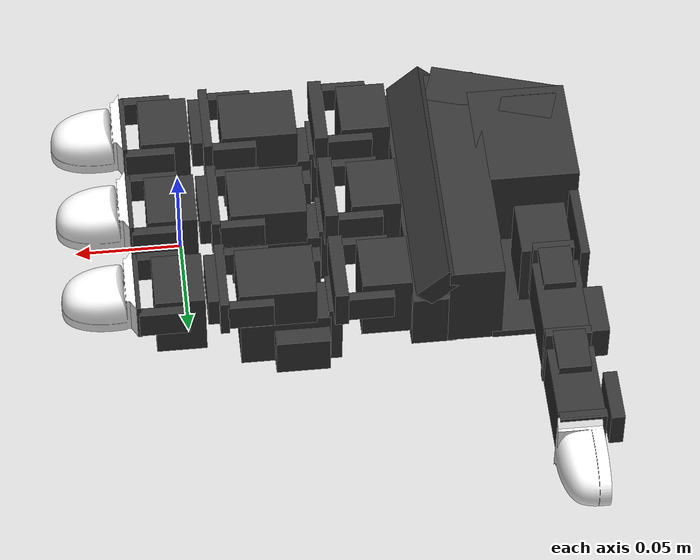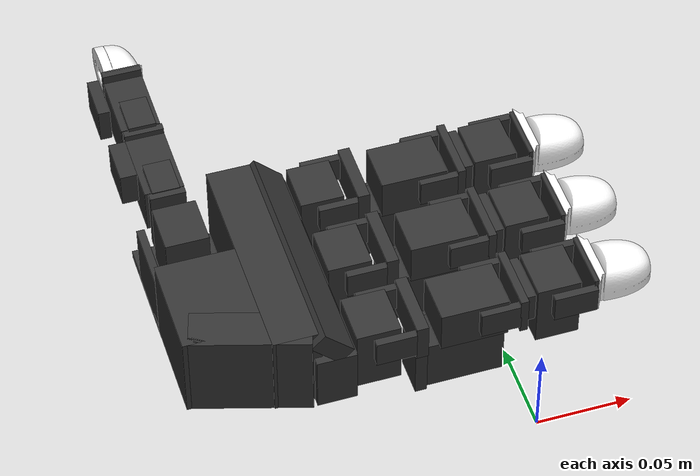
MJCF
<mujoco model="leap_lh">
  <compiler angle="radian" meshdir="./assets/"/>
  <option integrator="implicitfast" cone="elliptic" impratio="100"/>

  <asset>
    <material name="black" rgba="0.2 0.2 0.2 1" />
    <material name="white" rgba="1 1 1 1" />

    <!-- Only tip meshes needed (used as collision geoms) -->
    <mesh name="tip" file="M2826_tip.obj"/>
    <mesh name="thumb_tip" file="M2826_thumb_tip.obj"/>
  </asset>

  <!-- defaults -->
  <default>
    <!-- constraint stiffness -->
    <geom solimp="0.999 0.999 0.001 0.0001 1" solref="0.0001 1" friction=".2"/>

    <!-- actuator defaults -->
    <position kp="3.0" kv="0.01" />
    <joint damping="0.03" frictionloss="0.001"/>

    <!-- geom class defaults -->
    <default class="collision">
      <geom material="black" />
    </default>
    <default class="tip">
      <geom type="mesh" mesh="tip" friction="0.5" material="white" />
    </default>
    <default class="thumb_tip">
      <geom type="mesh" mesh="thumb_tip" friction="0.5" material="white" />
    </default>

    <!-- joint class defaults -->
    <default class="mcp">
      <joint pos="0 0 0" axis="0 0 -1"
        limited="true" range="-0.1 1.91986" />
      <position ctrlrange="-0.1 1.91986" />
    </default>
    <default class="rot">
      <joint pos="0 0 0" axis="0 0 -1"
        limited="true" range="-0.523599 0.523599" />
      <position ctrlrange="-0.523599 0.523599" />
    </default>
    <default class="pip">
      <joint pos="0 0 0" axis="0 0 -1"
        limited="true" range="-0.05 1.91986" />
      <position ctrlrange="-0.1 1.91986" />
    </default>
    <default class="dip">
      <joint pos="0 0 0" axis="0 0 -1"
        limited="true" range="-0.1 1.91986" />
      <position ctrlrange="-0.1 1.91986" />
    </default>
    <default class="thumb_cmc">
      <joint pos="0 0 0" axis="0 0 1"
        limited="true" range="0  2.094" />
      <position ctrlrange="0 2.094" />
    </default>
    <default class="thumb_axl">
      <joint pos="0 0 0" axis="0 0 -1"
        limited="true" range="-2.1 0" />
      <position ctrlrange="-2.1 0" />
    </default>
    <default class="thumb_mcp">
      <joint pos="0 0 0" axis="0 0 -1"
        limited="true" range="-0.47 2.443" />
      <position ctrlrange="-0.47 2.443" />
    </default>
    <default class="thumb_ipl">
      <joint pos="0 0 0" axis="0 0 -1"
        limited="true" range="0 1.88" />
      <position ctrlrange="0 1.88" />
    </default>
  </default>

  <!-- collision filtering -->
  <contact>
    <!-- filter the palm from all other finger bodies except the tips -->
    <exclude body1="palm" body2="if_bs" />
    <exclude body1="palm" body2="mf_bs" />
    <exclude body1="palm" body2="rf_bs" />
    <exclude body1="palm" body2="th_mp" />

    <exclude body1="palm" body2="if_px" />
    <exclude body1="palm" body2="mf_px" />
    <exclude body1="palm" body2="rf_px" />
    <exclude body1="palm" body2="th_bs" />

    <exclude body1="palm" body2="if_md" />
    <exclude body1="palm" body2="mf_md" />
    <exclude body1="palm" body2="rf_md" />
    <exclude body1="palm" body2="th_px" />

    <!-- none of the base fingertip geoms can touch each other -->
    <exclude body1="if_bs" body2="mf_bs" />
    <exclude body1="if_bs" body2="rf_bs" />
    <exclude body1="mf_bs" body2="rf_bs" />

    <exclude body1="th_mp" body2="if_bs" />
    <exclude body1="th_mp" body2="mf_bs" />
    <exclude body1="th_mp" body2="rf_bs" />
  </contact>

  <!-- actuators -->
  <actuator>
    <!-- index -->
    <position name="if_mcp_act" joint="if_mcp" class="mcp" />
    <position name="if_rot_act" joint="if_rot" class="rot" />
    <position name="if_pip_act" joint="if_pip" class="pip" />
    <position name="if_dip_act" joint="if_dip" class="dip" />

    <!-- middle -->
    <position name="mf_mcp_act" joint="mf_mcp" class="mcp" />
    <position name="mf_rot_act" joint="mf_rot" class="rot" />
    <position name="mf_pip_act" joint="mf_pip" class="pip" />
    <position name="mf_dip_act" joint="mf_dip" class="dip" />

    <!-- ring -->
    <position name="rf_mcp_act" joint="rf_mcp" class="mcp" />
    <position name="rf_rot_act" joint="rf_rot" class="rot" />
    <position name="rf_pip_act" joint="rf_pip" class="pip" />
    <position name="rf_dip_act" joint="rf_dip" class="dip" />

    <!-- thumb -->
    <position name="th_cmc_act" joint="th_cmc" class="thumb_cmc" />
    <position name="th_axl_act" joint="th_axl" class="thumb_axl" />
    <position name="th_mcp_act" joint="th_mcp" class="thumb_mcp" />
    <position name="th_ipl_act" joint="th_ipl" class="thumb_ipl" />
  </actuator>

  <!-- sensors -->
  <sensor>
    <!-- index -->
    <jointpos name="if_mcp_sensor" joint="if_mcp" />
    <jointpos name="if_rot_sensor" joint="if_rot" />
    <jointpos name="if_pip_sensor" joint="if_pip" />
    <jointpos name="if_dip_sensor" joint="if_dip" />

    <!-- middle -->
    <jointpos name="mf_mcp_sensor" joint="mf_mcp" />
    <jointpos name="mf_rot_sensor" joint="mf_rot" />
    <jointpos name="mf_pip_sensor" joint="mf_pip" />
    <jointpos name="mf_dip_sensor" joint="mf_dip" />

    <!-- ring -->
    <jointpos name="rf_mcp_sensor" joint="rf_mcp" />
    <jointpos name="rf_rot_sensor" joint="rf_rot" />
    <jointpos name="rf_pip_sensor" joint="rf_pip" />
    <jointpos name="rf_dip_sensor" joint="rf_dip" />

    <!-- thumb -->
    <jointpos name="th_cmc_sensor" joint="th_cmc" />
    <jointpos name="th_axl_sensor" joint="th_axl" />
    <jointpos name="th_mcp_sensor" joint="th_mcp" />
    <jointpos name="th_ipl_sensor" joint="th_ipl" />
  </sensor>

  <worldbody>
    <body name="palm" pos="0 0 0.1" quat="0 1 0 0">
      <!-- palm -->
      <inertial pos="-0.12546 -0.047739 0.015867" quat="0.423786 0.570263 -0.402758 0.577054" mass="0.235" diaginertia="0.000405067 0.000304529 0.000179484"/>
      <geom name="palm_collision_1" size="0.011 0.013 0.017" pos="-0.0848 -0.0996 0.0152" type="box" class="collision"/>
      <geom name="palm_collision_2" size="0.011 0.013 0.017" pos="-0.0848 -0.0546 0.0152" type="box" class="collision"/>
      <geom name="palm_collision_3" size="0.011 0.013 0.017" pos="-0.0848 -0.0096 0.0152" type="box" class="collision"/>
      <geom name="palm_collision_4" size="0.029 0.01 0.023" pos="-0.1428 -0.0126 0.0147" quat="0.989016 0 0 0.147806" type="box" class="collision"/>
      <geom name="palm_collision_5" size="0.01 0.06 0.015" pos="-0.1058 -0.0555 0.0232" type="box" class="collision"/>
      <geom name="palm_collision_6" size="0.005 0.06 0.01" pos="-0.1078 -0.0555 0.0002" quat="0.923956 0 0.382499 0" type="box" class="collision"/>
      <geom name="palm_collision_7" size="0.012 0.058 0.023" pos="-0.1238 -0.0575 0.0147" type="box" class="collision"/>
      <geom name="palm_collision_8" size="0.022 0.026 0.023" pos="-0.1538 -0.0375 0.0147" type="box" class="collision"/>
      <geom name="palm_collision_9" size="0.002 0.018 0.017" pos="-0.1738 -0.0815 0.0202" type="box" class="collision"/>
      <geom name="palm_collision_10" size="0.022 0.028 0.002" pos="-0.1538 -0.0875 0.0362" type="box" class="collision"/>

      <!-- index -->
      <body name="if_bs" pos="-0.0825 -0.0857 0.0078" quat="0.500003 0.5 0.5 -0.499997">
        <inertial pos="-0.022516 0.033882 0.016359" quat="0.388092 0.677951 -0.247713 0.573067" mass="0.044" diaginertia="1.74972e-05 1.61504e-05 7.21342e-06"/>
        <joint name="if_mcp" class="mcp"/>
        <geom name="if_bs_collision_1" size="0.01 0.003 0.017" pos="0 0.018 0.0147" type="box" class="collision"/>
        <geom name="if_bs_collision_2" size="0.014 0.02 0.01" pos="-0.027 0.042 0.015" type="box" class="collision"/>
        <geom name="if_bs_collision_3" size="0.017 0.003 0.01" pos="-0.0262 0.02 0.0146" type="box" class="collision"/>
        <geom name="if_bs_collision_4" size="0.01 0.012 0.004" pos="-0.0295 0.035 0.029" type="box" class="collision"/>
        <geom name="if_bs_collision_5" size="0.007 0.01 0.002" pos="0 0.005 0.03" type="box" class="collision"/>
        <geom name="if_bs_collision_6" size="0.007 0.01 0.002" pos="0 0.005 -0.001" type="box" class="collision"/>

        <body name="if_px" pos="-0.0122 0.0381 0.0145" quat="0.500003 -0.5 -0.499997 0.5">
          <inertial pos="0.0075 -0.0002 -0.011" quat="0 0.707107 0 0.707107" mass="0.032" diaginertia="4.8853e-06 4.3733e-06 3.0933e-06"/>
          <joint name="if_rot" class="rot"/>
          <geom name="if_px_collision" size="0.017 0.013 0.011" pos="0.0075 -0.0002 -0.011" type="box" class="collision"/>

          <body name="if_md" pos="0.015 0.0143 -0.013" quat="0.500003 0.5 -0.5 0.499997">
            <inertial pos="0.0054215 -0.029148 0.015" quat="0.687228 0.687228 0.166487 0.166487" mass="0.037" diaginertia="8.28004e-06 8.1598e-06 5.39516e-06"/>
            <joint name="if_pip" class="pip"/>
            <geom name="if_md_collision_1" size="0.008 0.003 0.013" pos="0 -0.02 0.015" type="box" class="collision"/>
            <geom name="if_md_collision_2" size="0.01 0.002 0.017" pos="0 -0.016 0.015" type="box" class="collision"/>
            <geom name="if_md_collision_3" size="0.007 0.01 0.002" pos="0 -0.0045 0.03" type="box" class="collision"/>
            <geom name="if_md_collision_4" size="0.007 0.01 0.002" pos="0 -0.0045 0" type="box" class="collision"/>
            <geom name="if_md_collision_5" size="0.017 0.011 0.013" pos="0.0075 -0.035 0.015" type="box" class="collision"/>

            <body name="if_ds" pos="0 -0.0361 0.0002">
              <inertial pos="-0.0008794 -0.027019 0.014594" quat="0.702905 0.710643 -0.0212937 -0.0214203" mass="0.016" diaginertia="3.71863e-06 3.02396e-06 1.6518e-06"/>
              <joint name="if_dip" class="dip"/>
              <geom name="if_ds_collision_1" size="0.01 0.001 0.015" pos="0 -0.017 0.015" type="box" class="collision"/>
              <geom name="if_ds_collision_2" size="0.007 0.011 0.002" pos="0 -0.006 0.03" type="box" class="collision"/>
              <geom name="if_ds_collision_3" size="0.007 0.011 0.002" pos="0 -0.006 -0.001" type="box" class="collision"/>

              <geom name="if_tip" class="tip"/>
            </body>

          </body>
        </body>
      </body>  <!-- index -->

      <!-- middle -->
      <body name="mf_bs" pos="-0.0825 -0.0403 0.0078" quat="0.500003 0.5 0.5 -0.499997">
        <inertial pos="-0.022516 0.033882 0.016359" quat="0.388092 0.677951 -0.247713 0.573067" mass="0.044" diaginertia="1.74972e-05 1.61504e-05 7.21342e-06"/>
        <joint name="mf_mcp" class="mcp"/>
        <geom name="mf_bs_collision_1" size="0.01 0.003 0.017" pos="0 0.018 0.0147" type="box" class="collision"/>
        <geom name="mf_bs_collision_2" size="0.014 0.02 0.01" pos="-0.027 0.042 0.015" type="box" class="collision"/>
        <geom name="mf_bs_collision_3" size="0.017 0.003 0.01" pos="-0.0262 0.02 0.0146" type="box" class="collision"/>
        <geom name="mf_bs_collision_4" size="0.01 0.012 0.004" pos="-0.0295 0.035 0.029" type="box" class="collision"/>
        <geom name="mf_bs_collision_5" size="0.007 0.01 0.002" pos="0 0.005 0.03" type="box" class="collision"/>
        <geom name="mf_bs_collision_6" size="0.007 0.01 0.002" pos="0 0.005 -0.001" type="box" class="collision"/>

        <body name="mf_px" pos="-0.0122 0.0381 0.0145" quat="0.500003 -0.5 -0.499997 0.5">
          <inertial pos="0.0075 -0.0002 -0.011" quat="0 0.707107 0 0.707107" mass="0.032" diaginertia="4.8853e-06 4.3733e-06 3.0933e-06"/>
          <joint name="mf_rot" class="rot"/>
          <geom name="mf_px_collision" size="0.017 0.013 0.011" pos="0.0075 -0.0002 -0.011" type="box" class="collision"/>

          <body name="mf_md" pos="0.015 0.0143 -0.013" quat="0.500003 0.5 -0.5 0.499997">
            <inertial pos="0.0054215 -0.029148 0.015" quat="0.687228 0.687228 0.166487 0.166487" mass="0.037" diaginertia="8.28004e-06 8.1598e-06 5.39516e-06"/>
            <joint name="mf_pip" class="pip"/>
            <geom name="mf_md_collision_1" size="0.008 0.003 0.013" pos="0 -0.02 0.015" type="box" class="collision"/>
            <geom name="mf_md_collision_2" size="0.01 0.002 0.017" pos="0 -0.016 0.015" type="box" class="collision"/>
            <geom name="mf_md_collision_3" size="0.007 0.01 0.002" pos="0 -0.0045 0.03" type="box" class="collision"/>
            <geom name="mf_md_collision_4" size="0.007 0.01 0.002" pos="0 -0.0045 0" type="box" class="collision"/>
            <geom name="mf_md_collision_5" size="0.017 0.011 0.013" pos="0.0075 -0.035 0.015" type="box" class="collision"/>

            <body name="mf_ds" pos="0 -0.0361 0.0002">
              <inertial pos="-0.0008794 -0.027019 0.014594" quat="0.702905 0.710643 -0.0212937 -0.0214203" mass="0.016" diaginertia="3.71863e-06 3.02396e-06 1.6518e-06"/>
              <joint name="mf_dip" class="dip"/>
              <geom name="mf_ds_collision_1" size="0.01 0.001 0.015" pos="0 -0.017 0.015" type="box" class="collision"/>
              <geom name="mf_ds_collision_2" size="0.007 0.011 0.002" pos="0 -0.006 0.03" type="box" class="collision"/>
              <geom name="mf_ds_collision_3" size="0.007 0.011 0.002" pos="0 -0.006 -0.001" type="box" class="collision"/>

              <geom name="mf_tip" class="tip"/>
            </body>

          </body>
        </body>
      </body>  <!-- middle -->

      <!-- ring -->
      <body name="rf_bs" pos="-0.0825 0.0051 0.0078" quat="0.500003 0.5 0.5 -0.499997">
        <inertial pos="-0.022516 0.033882 0.016359" quat="0.388092 0.677951 -0.247713 0.573067" mass="0.044" diaginertia="1.74972e-05 1.61504e-05 7.21342e-06"/>
        <joint name="rf_mcp" class="mcp"/>
        <geom name="rf_bs_collision_1" size="0.01 0.003 0.017" pos="0 0.018 0.0147" type="box" class="collision"/>
        <geom name="rf_bs_collision_2" size="0.014 0.02 0.01" pos="-0.027 0.042 0.015" type="box" class="collision"/>
        <geom name="rf_bs_collision_3" size="0.017 0.003 0.01" pos="-0.0262 0.02 0.0146" type="box" class="collision"/>
        <geom name="rf_bs_collision_4" size="0.01 0.012 0.004" pos="-0.0295 0.035 0.029" type="box" class="collision"/>
        <geom name="rf_bs_collision_5" size="0.007 0.01 0.002" pos="0 0.005 0.03" type="box" class="collision"/>
        <geom name="rf_bs_collision_6" size="0.007 0.01 0.002" pos="0 0.005 -0.001" type="box" class="collision"/>

        <body name="rf_px" pos="-0.0122 0.0381 0.0145" quat="0.500003 -0.5 -0.499997 0.5">
          <inertial pos="0.0075 -0.0002 -0.011" quat="0 0.707107 0 0.707107" mass="0.032" diaginertia="4.8853e-06 4.3733e-06 3.0933e-06"/>
          <joint name="rf_rot" class="rot"/>
          <geom name="rf_px_collision" size="0.017 0.013 0.011" pos="0.0075 -0.0002 -0.011" type="box" class="collision"/>

          <body name="rf_md" pos="0.015 0.0143 -0.013" quat="0.500003 0.5 -0.5 0.499997">
            <inertial pos="0.0054215 -0.029148 0.015" quat="0.687228 0.687228 0.166487 0.166487" mass="0.037" diaginertia="8.28004e-06 8.1598e-06 5.39516e-06"/>
            <joint name="rf_pip" class="pip"/>
            <geom name="rf_md_collision_1" size="0.008 0.003 0.013" pos="0 -0.02 0.015" type="box" class="collision"/>
            <geom name="rf_md_collision_2" size="0.01 0.002 0.017" pos="0 -0.016 0.015" type="box" class="collision"/>
            <geom name="rf_md_collision_3" size="0.007 0.01 0.002" pos="0 -0.0045 0.03" type="box" class="collision"/>
            <geom name="rf_md_collision_4" size="0.007 0.01 0.002" pos="0 -0.0045 0" type="box" class="collision"/>
            <geom name="rf_md_collision_5" size="0.017 0.011 0.013" pos="0.0075 -0.035 0.015" type="box" class="collision"/>

            <body name="rf_ds" pos="0 -0.03609 0.0002">
              <inertial pos="-0.0008794 -0.027019 0.014594" quat="0.702905 0.710643 -0.0212937 -0.0214203" mass="0.016" diaginertia="3.71863e-06 3.02396e-06 1.6518e-06"/>
              <joint name="rf_dip" class="dip"/>
              <geom name="rf_ds_collision_1" size="0.01 0.001 0.015" pos="0 -0.017 0.015" type="box" class="collision"/>
              <geom name="rf_ds_collision_2" size="0.007 0.011 0.002" pos="0 -0.006 0.03" type="box" class="collision"/>
              <geom name="rf_ds_collision_3" size="0.007 0.011 0.002" pos="0 -0.006 -0.001" type="box" class="collision"/>

              <geom name="rf_tip" class="tip"/>
            </body>

          </body>
        </body>
      </body>  <!-- ring -->

      <!-- thumb -->
      <body name="th_mp" pos="-0.1448 -0.09 0.0049" quat="0.707109 0 0.707105 0">
        <inertial pos="-0.0069 0 -0.0109" quat="0 0.707107 0 0.707107" mass="0.032" diaginertia="4.8853e-06 4.3733e-06 3.0933e-06"/>
        <joint name="th_cmc" class="thumb_cmc"/>
        <geom name="th_mp_collision" size="0.017 0.013 0.011" pos="-0.0069 0 -0.0109" type="box" class="collision"/>

        <body name="th_bs" pos="0 -0.0143 -0.013" quat="0.500003 -0.5 -0.5 -0.499997">
          <inertial pos="0 0 -0.0070806" quat="0.707107 0.707107 0 0" mass="0.003" diaginertia="6.1932e-07 5.351e-07 2.1516e-07"/>
          <joint name="th_axl" class="thumb_axl"/>
          <geom name="th_bs_collision_1" size="0.009 0.0165 0.002" pos="0 0 -0.0015" type="box" class="collision"/>
          <geom name="th_bs_collision_2" size="0.007 0.002 0.01" pos="0 -0.015 -0.013" type="box" class="collision"/>
          <geom name="th_bs_collision_3" size="0.007 0.002 0.01" pos="0 0.015 -0.013" type="box" class="collision"/>

          <body name="th_px" pos="0 0.0145 -0.017" quat="0.707109 -0.707105 0 0">
            <inertial pos="-0.0020593 0.015912 -0.013733" quat="0.698518 0.697382 -0.104933 0.121324" mass="0.038" diaginertia="9.87104e-06 9.32653e-06 4.36203e-06"/>
            <joint name="th_mcp" class="thumb_mcp"/>
            <geom name="th_px_collision_1" size="0.01 0.02 0.012" pos="0 0.0105 -0.014" type="box" class="collision"/>
            <geom name="th_px_collision_2" size="0.01 0.002 0.016" pos="0 0.031 -0.015" type="box" class="collision"/>
            <geom name="th_px_collision_3" size="0.007 0.01 0.002" pos="0 0.042 0.001" type="box" class="collision"/>
            <geom name="th_px_collision_4" size="0.007 0.01 0.002" pos="0 0.042 -0.029" type="box" class="collision"/>
            <geom name="th_px_collision_5" size="0.005 0.012 0.009" pos="-0.0135 0.0175 -0.011656" type="box" class="collision"/>

            <body name="th_ds" pos="0 0.0466 0.0002" quat="1.32679e-06 0 0 1">
              <inertial pos="0.00096191 -0.024203 -0.014419" quat="0.35287 0.311272 -0.632839 0.614904" mass="0.049" diaginertia="2.08591e-05 2.0402e-05 4.71335e-06"/>
              <joint name="th_ipl" class="thumb_ipl"/>
              <geom name="th_ds_collision_1" size="0.01 0.018 0.012" pos="0 -0.0085 -0.015" type="box" class="collision"/>
              <geom name="th_ds_collision_2" size="0.01 0.002 0.015" pos="0 -0.029 -0.014" type="box" class="collision"/>
              <geom name="th_ds_collision_3" size="0.003 0.012 0.009" pos="0.015 -0.0175 -0.0115" type="box" class="collision"/>

              <geom name="th_tip" class="thumb_tip"/>
            </body>

          </body>
        </body>
      </body>  <!-- thumb -->

    </body>  <!-- palm -->
  </worldbody>
</mujoco>
